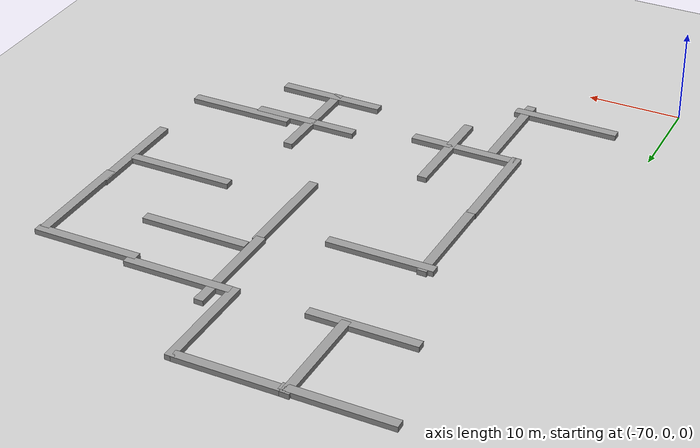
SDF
<sdf version="1.6">
 <world name="default">
  <model name="ground_plane">
   <static>1</static>
   <link name="link">
    <collision name="collision">
     <geometry><plane><normal>0 0 1</normal><size>100 100</size></plane></geometry>
     <surface><friction><ode><mu>100</mu><mu2>50</mu2></ode></friction></surface>
    </collision>
    <visual name="visual">
     <cast_shadows>0</cast_shadows>
     <geometry><plane><normal>0 0 1</normal><size>100 100</size></plane></geometry>
     <material>
      <script><uri>file://media/materials/scripts/gazebo.material</uri><name>Gazebo/Grey</name></script>
     </material>
    </visual>
   </link>
  </model>
  <model name="unit_box_0_static_clone_25">
   <link name="link">
    <inertial>
     <mass>11.3696</mass>
     <inertia><ixx>1.89495</ixx><ixy>0</ixy><ixz>0</ixz><iyy>123.426</iyy><iyz>0</iyz><izz>123.426</izz></inertia>
    </inertial>
    <kinematic>1</kinematic>
    <visual name="visual">
     <geometry><box><size>11.3696 1 1</size></box></geometry>
     <material>
      <script><name>Gazebo/Grey</name><uri>file://media/materials/scripts/gazebo.material</uri></script>
      <ambient>0.3 0.3 0.3 1</ambient>
      <diffuse>0.7 0.7 0.7 1</diffuse>
      <specular>0.01 0.01 0.01 1</specular>
      <emissive>0 0 0 1</emissive>
     </material>
    </visual>
    <collision name="collision">
     <geometry><box><size>11.3696 1 1</size></box></geometry>
     <surface>
      <friction>
       <ode><mu>1</mu><mu2>1</mu2><fdir1>0 0 0</fdir1><slip1>0</slip1><slip2>0</slip2></ode>
       <torsional>
        <coefficient>1</coefficient>
        <patch_radius>0</patch_radius>
        <surface_radius>0</surface_radius>
        <use_patch_radius>1</use_patch_radius>
        <ode><slip>0</slip></ode>
       </torsional>
      </friction>
      <bounce><restitution_coefficient>0</restitution_coefficient><threshold>1e+06</threshold></bounce>
      <contact>
       <collide_without_contact>0</collide_without_contact>
       <collide_without_contact_bitmask>1</collide_without_contact_bitmask>
       <collide_bitmask>1</collide_bitmask>
       <ode>
        <soft_cfm>0</soft_cfm>
        <soft_erp>0.2</soft_erp>
        <kp>1e+13</kp>
        <kd>1</kd>
        <max_vel>0.01</max_vel>
        <min_depth>0</min_depth>
       </ode>
       <bullet>
        <split_impulse>1</split_impulse>
        <split_impulse_penetration_threshold>-0.01</split_impulse_penetration_threshold>
        <soft_cfm>0</soft_cfm>
        <soft_erp>0.2</soft_erp>
        <kp>1e+13</kp>
        <kd>1</kd>
       </bullet>
      </contact>
     </surface>
    </collision>
   </link>
   <static>1</static>
   <pose>-27.422 19.4383 0 0 -0 0</pose>
  </model>
  <model name="unit_box_0_static_clone_26">
   <link name="link">
    <inertial>
     <mass>11.3696</mass>
     <inertia><ixx>1.89495</ixx><ixy>0</ixy><ixz>0</ixz><iyy>123.426</iyy><iyz>0</iyz><izz>123.426</izz></inertia>
    </inertial>
    <kinematic>1</kinematic>
    <visual name="visual">
     <geometry><box><size>11.3696 1 1</size></box></geometry>
     <material>
      <script><name>Gazebo/Grey</name><uri>file://media/materials/scripts/gazebo.material</uri></script>
      <ambient>0.3 0.3 0.3 1</ambient>
      <diffuse>0.7 0.7 0.7 1</diffuse>
      <specular>0.01 0.01 0.01 1</specular>
      <emissive>0 0 0 1</emissive>
     </material>
    </visual>
    <collision name="collision">
     <geometry><box><size>11.3696 1 1</size></box></geometry>
     <surface>
      <friction>
       <ode><mu>1</mu><mu2>1</mu2><fdir1>0 0 0</fdir1><slip1>0</slip1><slip2>0</slip2></ode>
       <torsional>
        <coefficient>1</coefficient>
        <patch_radius>0</patch_radius>
        <surface_radius>0</surface_radius>
        <use_patch_radius>1</use_patch_radius>
        <ode><slip>0</slip></ode>
       </torsional>
      </friction>
      <bounce><restitution_coefficient>0</restitution_coefficient><threshold>1e+06</threshold></bounce>
      <contact>
       <collide_without_contact>0</collide_without_contact>
       <collide_without_contact_bitmask>1</collide_without_contact_bitmask>
       <collide_bitmask>1</collide_bitmask>
       <ode>
        <soft_cfm>0</soft_cfm>
        <soft_erp>0.2</soft_erp>
        <kp>1e+13</kp>
        <kd>1</kd>
        <max_vel>0.01</max_vel>
        <min_depth>0</min_depth>
       </ode>
       <bullet>
        <split_impulse>1</split_impulse>
        <split_impulse_penetration_threshold>-0.01</split_impulse_penetration_threshold>
        <soft_cfm>0</soft_cfm>
        <soft_erp>0.2</soft_erp>
        <kp>1e+13</kp>
        <kd>1</kd>
       </bullet>
      </contact>
     </surface>
    </collision>
   </link>
   <static>1</static>
   <pose>-34.7623 18.6123 0 0 -0 0</pose>
  </model>
  <model name="unit_box_0_static_clone_28">
   <link name="link">
    <inertial>
     <mass>11.3696</mass>
     <inertia><ixx>1.89495</ixx><ixy>0</ixy><ixz>0</ixz><iyy>123.426</iyy><iyz>0</iyz><izz>123.426</izz></inertia>
    </inertial>
    <kinematic>1</kinematic>
    <visual name="visual">
     <geometry><box><size>11.3696 1 1</size></box></geometry>
     <material>
      <script><name>Gazebo/Grey</name><uri>file://media/materials/scripts/gazebo.material</uri></script>
      <ambient>0.3 0.3 0.3 1</ambient>
      <diffuse>0.7 0.7 0.7 1</diffuse>
      <specular>0.01 0.01 0.01 1</specular>
      <emissive>0 0 0 1</emissive>
     </material>
    </visual>
    <collision name="collision">
     <geometry><box><size>11.3696 1 1</size></box></geometry>
     <surface>
      <friction>
       <ode><mu>1</mu><mu2>1</mu2><fdir1>0 0 0</fdir1><slip1>0</slip1><slip2>0</slip2></ode>
       <torsional>
        <coefficient>1</coefficient>
        <patch_radius>0</patch_radius>
        <surface_radius>0</surface_radius>
        <use_patch_radius>1</use_patch_radius>
        <ode><slip>0</slip></ode>
       </torsional>
      </friction>
      <bounce><restitution_coefficient>0</restitution_coefficient><threshold>1e+06</threshold></bounce>
      <contact>
       <collide_without_contact>0</collide_without_contact>
       <collide_without_contact_bitmask>1</collide_without_contact_bitmask>
       <collide_bitmask>1</collide_bitmask>
       <ode>
        <soft_cfm>0</soft_cfm>
        <soft_erp>0.2</soft_erp>
        <kp>1e+13</kp>
        <kd>1</kd>
        <max_vel>0.01</max_vel>
        <min_depth>0</min_depth>
       </ode>
       <bullet>
        <split_impulse>1</split_impulse>
        <split_impulse_penetration_threshold>-0.01</split_impulse_penetration_threshold>
        <soft_cfm>0</soft_cfm>
        <soft_erp>0.2</soft_erp>
        <kp>1e+13</kp>
        <kd>1</kd>
       </bullet>
      </contact>
     </surface>
    </collision>
   </link>
   <static>1</static>
   <pose>-52.1017 16.5504 0 0 -0 0</pose>
  </model>
  <model name="unit_box_0_static_clone_30">
   <link name="link">
    <inertial>
     <mass>11.3696</mass>
     <inertia><ixx>1.89495</ixx><ixy>0</ixy><ixz>0</ixz><iyy>123.426</iyy><iyz>0</iyz><izz>123.426</izz></inertia>
    </inertial>
    <kinematic>1</kinematic>
    <visual name="visual">
     <geometry><box><size>11.3696 1 1</size></box></geometry>
     <material>
      <script><name>Gazebo/Grey</name><uri>file://media/materials/scripts/gazebo.material</uri></script>
      <ambient>0.3 0.3 0.3 1</ambient>
      <diffuse>0.7 0.7 0.7 1</diffuse>
      <specular>0.01 0.01 0.01 1</specular>
      <emissive>0 0 0 1</emissive>
     </material>
    </visual>
    <collision name="collision">
     <geometry><box><size>11.3696 1 1</size></box></geometry>
     <surface>
      <friction>
       <ode><mu>1</mu><mu2>1</mu2><fdir1>0 0 0</fdir1><slip1>0</slip1><slip2>0</slip2></ode>
       <torsional>
        <coefficient>1</coefficient>
        <patch_radius>0</patch_radius>
        <surface_radius>0</surface_radius>
        <use_patch_radius>1</use_patch_radius>
        <ode><slip>0</slip></ode>
       </torsional>
      </friction>
      <bounce><restitution_coefficient>0</restitution_coefficient><threshold>1e+06</threshold></bounce>
      <contact>
       <collide_without_contact>0</collide_without_contact>
       <collide_without_contact_bitmask>1</collide_without_contact_bitmask>
       <collide_bitmask>1</collide_bitmask>
       <ode>
        <soft_cfm>0</soft_cfm>
        <soft_erp>0.2</soft_erp>
        <kp>1e+13</kp>
        <kd>1</kd>
        <max_vel>0.01</max_vel>
        <min_depth>0</min_depth>
       </ode>
       <bullet>
        <split_impulse>1</split_impulse>
        <split_impulse_penetration_threshold>-0.01</split_impulse_penetration_threshold>
        <soft_cfm>0</soft_cfm>
        <soft_erp>0.2</soft_erp>
        <kp>1e+13</kp>
        <kd>1</kd>
       </bullet>
      </contact>
     </surface>
    </collision>
   </link>
   <static>1</static>
   <pose>-59.7194 6.87841 0 0 -0 0</pose>
  </model>
  <model name="unit_box_0_static_clone_35_clone_9">
   <link name="link">
    <inertial>
     <mass>11.3696</mass>
     <inertia><ixx>1.89495</ixx><ixy>0</ixy><ixz>0</ixz><iyy>123.426</iyy><iyz>0</iyz><izz>123.426</izz></inertia>
    </inertial>
    <kinematic>1</kinematic>
    <visual name="visual">
     <geometry><box><size>11.3696 1 1</size></box></geometry>
     <material>
      <script><name>Gazebo/Grey</name><uri>file://media/materials/scripts/gazebo.material</uri></script>
      <ambient>0.3 0.3 0.3 1</ambient>
      <diffuse>0.7 0.7 0.7 1</diffuse>
      <specular>0.01 0.01 0.01 1</specular>
      <emissive>0 0 0 1</emissive>
     </material>
    </visual>
    <collision name="collision">
     <geometry><box><size>11.3696 1 1</size></box></geometry>
     <surface>
      <friction>
       <ode><mu>1</mu><mu2>1</mu2><fdir1>0 0 0</fdir1><slip1>0</slip1><slip2>0</slip2></ode>
       <torsional>
        <coefficient>1</coefficient>
        <patch_radius>0</patch_radius>
        <surface_radius>0</surface_radius>
        <use_patch_radius>1</use_patch_radius>
        <ode><slip>0</slip></ode>
       </torsional>
      </friction>
      <bounce><restitution_coefficient>0</restitution_coefficient><threshold>1e+06</threshold></bounce>
      <contact>
       <collide_without_contact>0</collide_without_contact>
       <collide_without_contact_bitmask>1</collide_without_contact_bitmask>
       <collide_bitmask>1</collide_bitmask>
       <ode>
        <soft_cfm>0</soft_cfm>
        <soft_erp>0.2</soft_erp>
        <kp>1e+13</kp>
        <kd>1</kd>
        <max_vel>0.01</max_vel>
        <min_depth>0</min_depth>
       </ode>
       <bullet>
        <split_impulse>1</split_impulse>
        <split_impulse_penetration_threshold>-0.01</split_impulse_penetration_threshold>
        <soft_cfm>0</soft_cfm>
        <soft_erp>0.2</soft_erp>
        <kp>1e+13</kp>
        <kd>1</kd>
       </bullet>
      </contact>
     </surface>
    </collision>
   </link>
   <static>1</static>
   <pose>-55.185 11.2004 0 0 0 -1.5917</pose>
  </model>
  <model name="unit_box_0_static_clone_35_clone_8_clone">
   <link name="link">
    <inertial>
     <mass>11.3696</mass>
     <inertia><ixx>1.89495</ixx><ixy>0</ixy><ixz>0</ixz><iyy>123.426</iyy><iyz>0</iyz><izz>123.426</izz></inertia>
    </inertial>
    <kinematic>1</kinematic>
    <visual name="visual">
     <geometry><box><size>11.3696 1 1</size></box></geometry>
     <material>
      <script><name>Gazebo/Grey</name><uri>file://media/materials/scripts/gazebo.material</uri></script>
      <ambient>0.3 0.3 0.3 1</ambient>
      <diffuse>0.7 0.7 0.7 1</diffuse>
      <specular>0.01 0.01 0.01 1</specular>
      <emissive>0 0 0 1</emissive>
     </material>
    </visual>
    <collision name="collision">
     <geometry><box><size>11.3696 1 1</size></box></geometry>
     <surface>
      <friction>
       <ode><mu>1</mu><mu2>1</mu2><fdir1>0 0 0</fdir1><slip1>0</slip1><slip2>0</slip2></ode>
       <torsional>
        <coefficient>1</coefficient>
        <patch_radius>0</patch_radius>
        <surface_radius>0</surface_radius>
        <use_patch_radius>1</use_patch_radius>
        <ode><slip>0</slip></ode>
       </torsional>
      </friction>
      <bounce><restitution_coefficient>0</restitution_coefficient><threshold>1e+06</threshold></bounce>
      <contact>
       <collide_without_contact>0</collide_without_contact>
       <collide_without_contact_bitmask>1</collide_without_contact_bitmask>
       <collide_bitmask>1</collide_bitmask>
       <ode>
        <soft_cfm>0</soft_cfm>
        <soft_erp>0.2</soft_erp>
        <kp>1e+13</kp>
        <kd>1</kd>
        <max_vel>0.01</max_vel>
        <min_depth>0</min_depth>
       </ode>
       <bullet>
        <split_impulse>1</split_impulse>
        <split_impulse_penetration_threshold>-0.01</split_impulse_penetration_threshold>
        <soft_cfm>0</soft_cfm>
        <soft_erp>0.2</soft_erp>
        <kp>1e+13</kp>
        <kd>1</kd>
       </bullet>
      </contact>
     </surface>
    </collision>
   </link>
   <static>1</static>
   <pose>-50.6371 17.7685 0 0 0 -1.5917</pose>
  </model>
  <model name="unit_box_0_static_clone_35_clone_8_clone_0">
   <link name="link">
    <inertial>
     <mass>11.3696</mass>
     <inertia><ixx>1.89495</ixx><ixy>0</ixy><ixz>0</ixz><iyy>123.426</iyy><iyz>0</iyz><izz>123.426</izz></inertia>
    </inertial>
    <kinematic>1</kinematic>
    <visual name="visual">
     <geometry><box><size>11.3696 1 1</size></box></geometry>
     <material>
      <script><name>Gazebo/Grey</name><uri>file://media/materials/scripts/gazebo.material</uri></script>
      <ambient>0.3 0.3 0.3 1</ambient>
      <diffuse>0.7 0.7 0.7 1</diffuse>
      <specular>0.01 0.01 0.01 1</specular>
      <emissive>0 0 0 1</emissive>
     </material>
    </visual>
    <collision name="collision">
     <geometry><box><size>11.3696 1 1</size></box></geometry>
     <surface>
      <friction>
       <ode><mu>1</mu><mu2>1</mu2><fdir1>0 0 0</fdir1><slip1>0</slip1><slip2>0</slip2></ode>
       <torsional>
        <coefficient>1</coefficient>
        <patch_radius>0</patch_radius>
        <surface_radius>0</surface_radius>
        <use_patch_radius>1</use_patch_radius>
        <ode><slip>0</slip></ode>
       </torsional>
      </friction>
      <bounce><restitution_coefficient>0</restitution_coefficient><threshold>1e+06</threshold></bounce>
      <contact>
       <collide_without_contact>0</collide_without_contact>
       <collide_without_contact_bitmask>1</collide_without_contact_bitmask>
       <collide_bitmask>1</collide_bitmask>
       <ode>
        <soft_cfm>0</soft_cfm>
        <soft_erp>0.2</soft_erp>
        <kp>1e+13</kp>
        <kd>1</kd>
        <max_vel>0.01</max_vel>
        <min_depth>0</min_depth>
       </ode>
       <bullet>
        <split_impulse>1</split_impulse>
        <split_impulse_penetration_threshold>-0.01</split_impulse_penetration_threshold>
        <soft_cfm>0</soft_cfm>
        <soft_erp>0.2</soft_erp>
        <kp>1e+13</kp>
        <kd>1</kd>
       </bullet>
      </contact>
     </surface>
    </collision>
   </link>
   <static>1</static>
   <pose>-35.3696 17.9853 0 0 0 -1.5917</pose>
  </model>
  <model name="unit_box_0_static_clone_25_clone">
   <link name="link">
    <inertial>
     <mass>11.3696</mass>
     <inertia><ixx>1.89495</ixx><ixy>0</ixy><ixz>0</ixz><iyy>123.426</iyy><iyz>0</iyz><izz>123.426</izz></inertia>
    </inertial>
    <kinematic>1</kinematic>
    <visual name="visual">
     <geometry><box><size>11.3696 1 1</size></box></geometry>
     <material>
      <script><name>Gazebo/Grey</name><uri>file://media/materials/scripts/gazebo.material</uri></script>
      <ambient>0.3 0.3 0.3 1</ambient>
      <diffuse>0.7 0.7 0.7 1</diffuse>
      <specular>0.01 0.01 0.01 1</specular>
      <emissive>0 0 0 1</emissive>
     </material>
    </visual>
    <collision name="collision">
     <geometry><box><size>11.3696 1 1</size></box></geometry>
     <surface>
      <friction>
       <ode><mu>1</mu><mu2>1</mu2><fdir1>0 0 0</fdir1><slip1>0</slip1><slip2>0</slip2></ode>
       <torsional>
        <coefficient>1</coefficient>
        <patch_radius>0</patch_radius>
        <surface_radius>0</surface_radius>
        <use_patch_radius>1</use_patch_radius>
        <ode><slip>0</slip></ode>
       </torsional>
      </friction>
      <bounce><restitution_coefficient>0</restitution_coefficient><threshold>1e+06</threshold></bounce>
      <contact>
       <collide_without_contact>0</collide_without_contact>
       <collide_without_contact_bitmask>1</collide_without_contact_bitmask>
       <collide_bitmask>1</collide_bitmask>
       <ode>
        <soft_cfm>0</soft_cfm>
        <soft_erp>0.2</soft_erp>
        <kp>1e+13</kp>
        <kd>1</kd>
        <max_vel>0.01</max_vel>
        <min_depth>0</min_depth>
       </ode>
       <bullet>
        <split_impulse>1</split_impulse>
        <split_impulse_penetration_threshold>-0.01</split_impulse_penetration_threshold>
        <soft_cfm>0</soft_cfm>
        <soft_erp>0.2</soft_erp>
        <kp>1e+13</kp>
        <kd>1</kd>
       </bullet>
      </contact>
     </surface>
    </collision>
   </link>
   <static>1</static>
   <pose>-34.9545 12.8777 0 0 -0 0</pose>
  </model>
  <model name="unit_box_0_static_clone_35_clone_10_clone_0">
   <link name="link">
    <inertial>
     <mass>11.3696</mass>
     <inertia><ixx>1.89495</ixx><ixy>0</ixy><ixz>0</ixz><iyy>123.426</iyy><iyz>0</iyz><izz>123.426</izz></inertia>
    </inertial>
    <kinematic>1</kinematic>
    <visual name="visual">
     <geometry><box><size>11.3696 1 1</size></box></geometry>
     <material>
      <script><name>Gazebo/Grey</name><uri>file://media/materials/scripts/gazebo.material</uri></script>
      <ambient>0.3 0.3 0.3 1</ambient>
      <diffuse>0.7 0.7 0.7 1</diffuse>
      <specular>0.01 0.01 0.01 1</specular>
      <emissive>0 0 0 1</emissive>
     </material>
    </visual>
    <collision name="collision">
     <geometry><box><size>11.3696 1 1</size></box></geometry>
     <surface>
      <friction>
       <ode><mu>1</mu><mu2>1</mu2><fdir1>0 0 0</fdir1><slip1>0</slip1><slip2>0</slip2></ode>
       <torsional>
        <coefficient>1</coefficient>
        <patch_radius>0</patch_radius>
        <surface_radius>0</surface_radius>
        <use_patch_radius>1</use_patch_radius>
        <ode><slip>0</slip></ode>
       </torsional>
      </friction>
      <bounce><restitution_coefficient>0</restitution_coefficient><threshold>1e+06</threshold></bounce>
      <contact>
       <collide_without_contact>0</collide_without_contact>
       <collide_without_contact_bitmask>1</collide_without_contact_bitmask>
       <collide_bitmask>1</collide_bitmask>
       <ode>
        <soft_cfm>0</soft_cfm>
        <soft_erp>0.2</soft_erp>
        <kp>1e+13</kp>
        <kd>1</kd>
        <max_vel>0.01</max_vel>
        <min_depth>0</min_depth>
       </ode>
       <bullet>
        <split_impulse>1</split_impulse>
        <split_impulse_penetration_threshold>-0.01</split_impulse_penetration_threshold>
        <soft_cfm>0</soft_cfm>
        <soft_erp>0.2</soft_erp>
        <kp>1e+13</kp>
        <kd>1</kd>
       </bullet>
      </contact>
     </surface>
    </collision>
   </link>
   <static>1</static>
   <pose>-21.9078 32.2965 0 0 0 -1.5917</pose>
  </model>
  <model name="unit_box_0_static_clone_35_clone_10_clone_1">
   <link name="link">
    <inertial>
     <mass>11.3696</mass>
     <inertia><ixx>1.89495</ixx><ixy>0</ixy><ixz>0</ixz><iyy>123.426</iyy><iyz>0</iyz><izz>123.426</izz></inertia>
    </inertial>
    <kinematic>1</kinematic>
    <visual name="visual">
     <geometry><box><size>11.3696 1 1</size></box></geometry>
     <material>
      <script><name>Gazebo/Grey</name><uri>file://media/materials/scripts/gazebo.material</uri></script>
      <ambient>0.3 0.3 0.3 1</ambient>
      <diffuse>0.7 0.7 0.7 1</diffuse>
      <specular>0.01 0.01 0.01 1</specular>
      <emissive>0 0 0 1</emissive>
     </material>
    </visual>
    <collision name="collision">
     <geometry><box><size>11.3696 1 1</size></box></geometry>
     <surface>
      <friction>
       <ode><mu>1</mu><mu2>1</mu2><fdir1>0 0 0</fdir1><slip1>0</slip1><slip2>0</slip2></ode>
       <torsional>
        <coefficient>1</coefficient>
        <patch_radius>0</patch_radius>
        <surface_radius>0</surface_radius>
        <use_patch_radius>1</use_patch_radius>
        <ode><slip>0</slip></ode>
       </torsional>
      </friction>
      <bounce><restitution_coefficient>0</restitution_coefficient><threshold>1e+06</threshold></bounce>
      <contact>
       <collide_without_contact>0</collide_without_contact>
       <collide_without_contact_bitmask>1</collide_without_contact_bitmask>
       <collide_bitmask>1</collide_bitmask>
       <ode>
        <soft_cfm>0</soft_cfm>
        <soft_erp>0.2</soft_erp>
        <kp>1e+13</kp>
        <kd>1</kd>
        <max_vel>0.01</max_vel>
        <min_depth>0</min_depth>
       </ode>
       <bullet>
        <split_impulse>1</split_impulse>
        <split_impulse_penetration_threshold>-0.01</split_impulse_penetration_threshold>
        <soft_cfm>0</soft_cfm>
        <soft_erp>0.2</soft_erp>
        <kp>1e+13</kp>
        <kd>1</kd>
       </bullet>
      </contact>
     </surface>
    </collision>
   </link>
   <static>1</static>
   <pose>-21.5691 41.9317 0 0 0 -1.5917</pose>
  </model>
  <model name="unit_box_0_static_clone_25_clone_0">
   <link name="link">
    <inertial>
     <mass>11.3696</mass>
     <inertia><ixx>1.89495</ixx><ixy>0</ixy><ixz>0</ixz><iyy>123.426</iyy><iyz>0</iyz><izz>123.426</izz></inertia>
    </inertial>
    <kinematic>1</kinematic>
    <visual name="visual">
     <geometry><box><size>11.3696 1 1</size></box></geometry>
     <material>
      <script><name>Gazebo/Grey</name><uri>file://media/materials/scripts/gazebo.material</uri></script>
      <ambient>0.3 0.3 0.3 1</ambient>
      <diffuse>0.7 0.7 0.7 1</diffuse>
      <specular>0.01 0.01 0.01 1</specular>
      <emissive>0 0 0 1</emissive>
     </material>
    </visual>
    <collision name="collision">
     <geometry><box><size>11.3696 1 1</size></box></geometry>
     <surface>
      <friction>
       <ode><mu>1</mu><mu2>1</mu2><fdir1>0 0 0</fdir1><slip1>0</slip1><slip2>0</slip2></ode>
       <torsional>
        <coefficient>1</coefficient>
        <patch_radius>0</patch_radius>
        <surface_radius>0</surface_radius>
        <use_patch_radius>1</use_patch_radius>
        <ode><slip>0</slip></ode>
       </torsional>
      </friction>
      <bounce><restitution_coefficient>0</restitution_coefficient><threshold>1e+06</threshold></bounce>
      <contact>
       <collide_without_contact>0</collide_without_contact>
       <collide_without_contact_bitmask>1</collide_without_contact_bitmask>
       <collide_bitmask>1</collide_bitmask>
       <ode>
        <soft_cfm>0</soft_cfm>
        <soft_erp>0.2</soft_erp>
        <kp>1e+13</kp>
        <kd>1</kd>
        <max_vel>0.01</max_vel>
        <min_depth>0</min_depth>
       </ode>
       <bullet>
        <split_impulse>1</split_impulse>
        <split_impulse_penetration_threshold>-0.01</split_impulse_penetration_threshold>
        <soft_cfm>0</soft_cfm>
        <soft_erp>0.2</soft_erp>
        <kp>1e+13</kp>
        <kd>1</kd>
       </bullet>
      </contact>
     </surface>
    </collision>
   </link>
   <static>1</static>
   <pose>-27.8506 32.812 0 0 -0 0</pose>
  </model>
  <model name="unit_box_0_static_clone_25_clone_1">
   <link name="link">
    <inertial>
     <mass>11.3696</mass>
     <inertia><ixx>1.89495</ixx><ixy>0</ixy><ixz>0</ixz><iyy>123.426</iyy><iyz>0</iyz><izz>123.426</izz></inertia>
    </inertial>
    <kinematic>1</kinematic>
    <visual name="visual">
     <geometry><box><size>11.3696 1 1</size></box></geometry>
     <material>
      <script><name>Gazebo/Grey</name><uri>file://media/materials/scripts/gazebo.material</uri></script>
      <ambient>0.3 0.3 0.3 1</ambient>
      <diffuse>0.7 0.7 0.7 1</diffuse>
      <specular>0.01 0.01 0.01 1</specular>
      <emissive>0 0 0 1</emissive>
     </material>
    </visual>
    <collision name="collision">
     <geometry><box><size>11.3696 1 1</size></box></geometry>
     <surface>
      <friction>
       <ode><mu>1</mu><mu2>1</mu2><fdir1>0 0 0</fdir1><slip1>0</slip1><slip2>0</slip2></ode>
       <torsional>
        <coefficient>1</coefficient>
        <patch_radius>0</patch_radius>
        <surface_radius>0</surface_radius>
        <use_patch_radius>1</use_patch_radius>
        <ode><slip>0</slip></ode>
       </torsional>
      </friction>
      <bounce><restitution_coefficient>0</restitution_coefficient><threshold>1e+06</threshold></bounce>
      <contact>
       <collide_without_contact>0</collide_without_contact>
       <collide_without_contact_bitmask>1</collide_without_contact_bitmask>
       <collide_bitmask>1</collide_bitmask>
       <ode>
        <soft_cfm>0</soft_cfm>
        <soft_erp>0.2</soft_erp>
        <kp>1e+13</kp>
        <kd>1</kd>
        <max_vel>0.01</max_vel>
        <min_depth>0</min_depth>
       </ode>
       <bullet>
        <split_impulse>1</split_impulse>
        <split_impulse_penetration_threshold>-0.01</split_impulse_penetration_threshold>
        <soft_cfm>0</soft_cfm>
        <soft_erp>0.2</soft_erp>
        <kp>1e+13</kp>
        <kd>1</kd>
       </bullet>
      </contact>
     </surface>
    </collision>
   </link>
   <static>1</static>
   <pose>-34.8222 41.6437 0 0 -0 0</pose>
  </model>
  <model name="unit_box_0_static_clone_25_clone_2">
   <link name="link">
    <inertial>
     <mass>11.3696</mass>
     <inertia><ixx>1.89495</ixx><ixy>0</ixy><ixz>0</ixz><iyy>123.426</iyy><iyz>0</iyz><izz>123.426</izz></inertia>
    </inertial>
    <kinematic>1</kinematic>
    <visual name="visual">
     <geometry><box><size>11.3696 1 1</size></box></geometry>
     <material>
      <script><name>Gazebo/Grey</name><uri>file://media/materials/scripts/gazebo.material</uri></script>
      <ambient>0.3 0.3 0.3 1</ambient>
      <diffuse>0.7 0.7 0.7 1</diffuse>
      <specular>0.01 0.01 0.01 1</specular>
      <emissive>0 0 0 1</emissive>
     </material>
    </visual>
    <collision name="collision">
     <geometry><box><size>11.3696 1 1</size></box></geometry>
     <surface>
      <friction>
       <ode><mu>1</mu><mu2>1</mu2><fdir1>0 0 0</fdir1><slip1>0</slip1><slip2>0</slip2></ode>
       <torsional>
        <coefficient>1</coefficient>
        <patch_radius>0</patch_radius>
        <surface_radius>0</surface_radius>
        <use_patch_radius>1</use_patch_radius>
        <ode><slip>0</slip></ode>
       </torsional>
      </friction>
      <bounce><restitution_coefficient>0</restitution_coefficient><threshold>1e+06</threshold></bounce>
      <contact>
       <collide_without_contact>0</collide_without_contact>
       <collide_without_contact_bitmask>1</collide_without_contact_bitmask>
       <collide_bitmask>1</collide_bitmask>
       <ode>
        <soft_cfm>0</soft_cfm>
        <soft_erp>0.2</soft_erp>
        <kp>1e+13</kp>
        <kd>1</kd>
        <max_vel>0.01</max_vel>
        <min_depth>0</min_depth>
       </ode>
       <bullet>
        <split_impulse>1</split_impulse>
        <split_impulse_penetration_threshold>-0.01</split_impulse_penetration_threshold>
        <soft_cfm>0</soft_cfm>
        <soft_erp>0.2</soft_erp>
        <kp>1e+13</kp>
        <kd>1</kd>
       </bullet>
      </contact>
     </surface>
    </collision>
   </link>
   <static>1</static>
   <pose>-26.5025 47.8711 0 0 -0 0</pose>
  </model>
  <model name="unit_box_0_static_clone_25_clone_3">
   <link name="link">
    <inertial>
     <mass>11.3696</mass>
     <inertia><ixx>1.89495</ixx><ixy>0</ixy><ixz>0</ixz><iyy>123.426</iyy><iyz>0</iyz><izz>123.426</izz></inertia>
    </inertial>
    <kinematic>1</kinematic>
    <visual name="visual">
     <geometry><box><size>11.3696 1 1</size></box></geometry>
     <material>
      <script><name>Gazebo/Grey</name><uri>file://media/materials/scripts/gazebo.material</uri></script>
      <ambient>0.3 0.3 0.3 1</ambient>
      <diffuse>0.7 0.7 0.7 1</diffuse>
      <specular>0.01 0.01 0.01 1</specular>
      <emissive>0 0 0 1</emissive>
     </material>
    </visual>
    <collision name="collision">
     <geometry><box><size>11.3696 1 1</size></box></geometry>
     <surface>
      <friction>
       <ode><mu>1</mu><mu2>1</mu2><fdir1>0 0 0</fdir1><slip1>0</slip1><slip2>0</slip2></ode>
       <torsional>
        <coefficient>1</coefficient>
        <patch_radius>0</patch_radius>
        <surface_radius>0</surface_radius>
        <use_patch_radius>1</use_patch_radius>
        <ode><slip>0</slip></ode>
       </torsional>
      </friction>
      <bounce><restitution_coefficient>0</restitution_coefficient><threshold>1e+06</threshold></bounce>
      <contact>
       <collide_without_contact>0</collide_without_contact>
       <collide_without_contact_bitmask>1</collide_without_contact_bitmask>
       <collide_bitmask>1</collide_bitmask>
       <ode>
        <soft_cfm>0</soft_cfm>
        <soft_erp>0.2</soft_erp>
        <kp>1e+13</kp>
        <kd>1</kd>
        <max_vel>0.01</max_vel>
        <min_depth>0</min_depth>
       </ode>
       <bullet>
        <split_impulse>1</split_impulse>
        <split_impulse_penetration_threshold>-0.01</split_impulse_penetration_threshold>
        <soft_cfm>0</soft_cfm>
        <soft_erp>0.2</soft_erp>
        <kp>1e+13</kp>
        <kd>1</kd>
       </bullet>
      </contact>
     </surface>
    </collision>
   </link>
   <static>1</static>
   <pose>-37.0887 48.6123 0 0 -0 0</pose>
  </model>
  <model name="unit_box_0_static_clone_35_clone_10_clone_clone_clone">
   <link name="link">
    <inertial>
     <mass>11.3696</mass>
     <inertia><ixx>1.89495</ixx><ixy>0</ixy><ixz>0</ixz><iyy>123.426</iyy><iyz>0</iyz><izz>123.426</izz></inertia>
    </inertial>
    <kinematic>1</kinematic>
    <visual name="visual">
     <geometry><box><size>11.3696 1 1</size></box></geometry>
     <material>
      <script><name>Gazebo/Grey</name><uri>file://media/materials/scripts/gazebo.material</uri></script>
      <ambient>0.3 0.3 0.3 1</ambient>
      <diffuse>0.7 0.7 0.7 1</diffuse>
      <specular>0.01 0.01 0.01 1</specular>
      <emissive>0 0 0 1</emissive>
     </material>
    </visual>
    <collision name="collision">
     <geometry><box><size>11.3696 1 1</size></box></geometry>
     <surface>
      <friction>
       <ode><mu>1</mu><mu2>1</mu2><fdir1>0 0 0</fdir1><slip1>0</slip1><slip2>0</slip2></ode>
       <torsional>
        <coefficient>1</coefficient>
        <patch_radius>0</patch_radius>
        <surface_radius>0</surface_radius>
        <use_patch_radius>1</use_patch_radius>
        <ode><slip>0</slip></ode>
       </torsional>
      </friction>
      <bounce><restitution_coefficient>0</restitution_coefficient><threshold>1e+06</threshold></bounce>
      <contact>
       <collide_without_contact>0</collide_without_contact>
       <collide_without_contact_bitmask>1</collide_without_contact_bitmask>
       <collide_bitmask>1</collide_bitmask>
       <ode>
        <soft_cfm>0</soft_cfm>
        <soft_erp>0.2</soft_erp>
        <kp>1e+13</kp>
        <kd>1</kd>
        <max_vel>0.01</max_vel>
        <min_depth>0</min_depth>
       </ode>
       <bullet>
        <split_impulse>1</split_impulse>
        <split_impulse_penetration_threshold>-0.01</split_impulse_penetration_threshold>
        <soft_cfm>0</soft_cfm>
        <soft_erp>0.2</soft_erp>
        <kp>1e+13</kp>
        <kd>1</kd>
       </bullet>
      </contact>
     </surface>
    </collision>
   </link>
   <static>1</static>
   <pose>-41.0093 45.6225 0 0 0 -1.5917</pose>
  </model>
  <model name="unit_box_0_static_clone_35_clone_10_clone_clone_clone_0">
   <link name="link">
    <inertial>
     <mass>11.3696</mass>
     <inertia><ixx>1.89495</ixx><ixy>0</ixy><ixz>0</ixz><iyy>123.426</iyy><iyz>0</iyz><izz>123.426</izz></inertia>
    </inertial>
    <kinematic>1</kinematic>
    <visual name="visual">
     <geometry><box><size>11.3696 1 1</size></box></geometry>
     <material>
      <script><name>Gazebo/Grey</name><uri>file://media/materials/scripts/gazebo.material</uri></script>
      <ambient>0.3 0.3 0.3 1</ambient>
      <diffuse>0.7 0.7 0.7 1</diffuse>
      <specular>0.01 0.01 0.01 1</specular>
      <emissive>0 0 0 1</emissive>
     </material>
    </visual>
    <collision name="collision">
     <geometry><box><size>11.3696 1 1</size></box></geometry>
     <surface>
      <friction>
       <ode><mu>1</mu><mu2>1</mu2><fdir1>0 0 0</fdir1><slip1>0</slip1><slip2>0</slip2></ode>
       <torsional>
        <coefficient>1</coefficient>
        <patch_radius>0</patch_radius>
        <surface_radius>0</surface_radius>
        <use_patch_radius>1</use_patch_radius>
        <ode><slip>0</slip></ode>
       </torsional>
      </friction>
      <bounce><restitution_coefficient>0</restitution_coefficient><threshold>1e+06</threshold></bounce>
      <contact>
       <collide_without_contact>0</collide_without_contact>
       <collide_without_contact_bitmask>1</collide_without_contact_bitmask>
       <collide_bitmask>1</collide_bitmask>
       <ode>
        <soft_cfm>0</soft_cfm>
        <soft_erp>0.2</soft_erp>
        <kp>1e+13</kp>
        <kd>1</kd>
        <max_vel>0.01</max_vel>
        <min_depth>0</min_depth>
       </ode>
       <bullet>
        <split_impulse>1</split_impulse>
        <split_impulse_penetration_threshold>-0.01</split_impulse_penetration_threshold>
        <soft_cfm>0</soft_cfm>
        <soft_erp>0.2</soft_erp>
        <kp>1e+13</kp>
        <kd>1</kd>
       </bullet>
      </contact>
     </surface>
    </collision>
   </link>
   <static>1</static>
   <pose>-41.0525 34.8017 0 0 0 -1.5917</pose>
  </model>
  <model name="unit_box_0_static_clone_35_clone_10_clone_clone_clone_1">
   <link name="link">
    <inertial>
     <mass>11.3696</mass>
     <inertia><ixx>1.89495</ixx><ixy>0</ixy><ixz>0</ixz><iyy>123.426</iyy><iyz>0</iyz><izz>123.426</izz></inertia>
    </inertial>
    <kinematic>1</kinematic>
    <visual name="visual">
     <geometry><box><size>11.3696 1 1</size></box></geometry>
     <material>
      <script><name>Gazebo/Grey</name><uri>file://media/materials/scripts/gazebo.material</uri></script>
      <ambient>0.3 0.3 0.3 1</ambient>
      <diffuse>0.7 0.7 0.7 1</diffuse>
      <specular>0.01 0.01 0.01 1</specular>
      <emissive>0 0 0 1</emissive>
     </material>
    </visual>
    <collision name="collision">
     <geometry><box><size>11.3696 1 1</size></box></geometry>
     <surface>
      <friction>
       <ode><mu>1</mu><mu2>1</mu2><fdir1>0 0 0</fdir1><slip1>0</slip1><slip2>0</slip2></ode>
       <torsional>
        <coefficient>1</coefficient>
        <patch_radius>0</patch_radius>
        <surface_radius>0</surface_radius>
        <use_patch_radius>1</use_patch_radius>
        <ode><slip>0</slip></ode>
       </torsional>
      </friction>
      <bounce><restitution_coefficient>0</restitution_coefficient><threshold>1e+06</threshold></bounce>
      <contact>
       <collide_without_contact>0</collide_without_contact>
       <collide_without_contact_bitmask>1</collide_without_contact_bitmask>
       <collide_bitmask>1</collide_bitmask>
       <ode>
        <soft_cfm>0</soft_cfm>
        <soft_erp>0.2</soft_erp>
        <kp>1e+13</kp>
        <kd>1</kd>
        <max_vel>0.01</max_vel>
        <min_depth>0</min_depth>
       </ode>
       <bullet>
        <split_impulse>1</split_impulse>
        <split_impulse_penetration_threshold>-0.01</split_impulse_penetration_threshold>
        <soft_cfm>0</soft_cfm>
        <soft_erp>0.2</soft_erp>
        <kp>1e+13</kp>
        <kd>1</kd>
       </bullet>
      </contact>
     </surface>
    </collision>
   </link>
   <static>1</static>
   <pose>-57.6962 21.6163 0 0 0 -1.5917</pose>
  </model>
  <model name="unit_box_0_static_clone_35_clone_10_clone_clone_clone_2">
   <link name="link">
    <inertial>
     <mass>11.3696</mass>
     <inertia><ixx>1.89495</ixx><ixy>0</ixy><ixz>0</ixz><iyy>123.426</iyy><iyz>0</iyz><izz>123.426</izz></inertia>
    </inertial>
    <kinematic>1</kinematic>
    <visual name="visual">
     <geometry><box><size>11.3696 1 1</size></box></geometry>
     <material>
      <script><name>Gazebo/Grey</name><uri>file://media/materials/scripts/gazebo.material</uri></script>
      <ambient>0.3 0.3 0.3 1</ambient>
      <diffuse>0.7 0.7 0.7 1</diffuse>
      <specular>0.01 0.01 0.01 1</specular>
      <emissive>0 0 0 1</emissive>
     </material>
    </visual>
    <collision name="collision">
     <geometry><box><size>11.3696 1 1</size></box></geometry>
     <surface>
      <friction>
       <ode><mu>1</mu><mu2>1</mu2><fdir1>0 0 0</fdir1><slip1>0</slip1><slip2>0</slip2></ode>
       <torsional>
        <coefficient>1</coefficient>
        <patch_radius>0</patch_radius>
        <surface_radius>0</surface_radius>
        <use_patch_radius>1</use_patch_radius>
        <ode><slip>0</slip></ode>
       </torsional>
      </friction>
      <bounce><restitution_coefficient>0</restitution_coefficient><threshold>1e+06</threshold></bounce>
      <contact>
       <collide_without_contact>0</collide_without_contact>
       <collide_without_contact_bitmask>1</collide_without_contact_bitmask>
       <collide_bitmask>1</collide_bitmask>
       <ode>
        <soft_cfm>0</soft_cfm>
        <soft_erp>0.2</soft_erp>
        <kp>1e+13</kp>
        <kd>1</kd>
        <max_vel>0.01</max_vel>
        <min_depth>0</min_depth>
       </ode>
       <bullet>
        <split_impulse>1</split_impulse>
        <split_impulse_penetration_threshold>-0.01</split_impulse_penetration_threshold>
        <soft_cfm>0</soft_cfm>
        <soft_erp>0.2</soft_erp>
        <kp>1e+13</kp>
        <kd>1</kd>
       </bullet>
      </contact>
     </surface>
    </collision>
   </link>
   <static>1</static>
   <pose>-57.4151 32.5537 0 0 0 -1.5917</pose>
  </model>
  <model name="unit_box_0_static_clone_35_clone_10_clone_clone_clone_3">
   <link name="link">
    <inertial>
     <mass>11.3696</mass>
     <inertia><ixx>1.89495</ixx><ixy>0</ixy><ixz>0</ixz><iyy>123.426</iyy><iyz>0</iyz><izz>123.426</izz></inertia>
    </inertial>
    <kinematic>1</kinematic>
    <visual name="visual">
     <geometry><box><size>11.3696 1 1</size></box></geometry>
     <material>
      <script><name>Gazebo/Grey</name><uri>file://media/materials/scripts/gazebo.material</uri></script>
      <ambient>0.3 0.3 0.3 1</ambient>
      <diffuse>0.7 0.7 0.7 1</diffuse>
      <specular>0.01 0.01 0.01 1</specular>
      <emissive>0 0 0 1</emissive>
     </material>
    </visual>
    <collision name="collision">
     <geometry><box><size>11.3696 1 1</size></box></geometry>
     <surface>
      <friction>
       <ode><mu>1</mu><mu2>1</mu2><fdir1>0 0 0</fdir1><slip1>0</slip1><slip2>0</slip2></ode>
       <torsional>
        <coefficient>1</coefficient>
        <patch_radius>0</patch_radius>
        <surface_radius>0</surface_radius>
        <use_patch_radius>1</use_patch_radius>
        <ode><slip>0</slip></ode>
       </torsional>
      </friction>
      <bounce><restitution_coefficient>0</restitution_coefficient><threshold>1e+06</threshold></bounce>
      <contact>
       <collide_without_contact>0</collide_without_contact>
       <collide_without_contact_bitmask>1</collide_without_contact_bitmask>
       <collide_bitmask>1</collide_bitmask>
       <ode>
        <soft_cfm>0</soft_cfm>
        <soft_erp>0.2</soft_erp>
        <kp>1e+13</kp>
        <kd>1</kd>
        <max_vel>0.01</max_vel>
        <min_depth>0</min_depth>
       </ode>
       <bullet>
        <split_impulse>1</split_impulse>
        <split_impulse_penetration_threshold>-0.01</split_impulse_penetration_threshold>
        <soft_cfm>0</soft_cfm>
        <soft_erp>0.2</soft_erp>
        <kp>1e+13</kp>
        <kd>1</kd>
       </bullet>
      </contact>
     </surface>
    </collision>
   </link>
   <static>1</static>
   <pose>-42.9193 53.8122 0 0 0 -1.5917</pose>
  </model>
  <model name="unit_box_0_static_clone_25_clone_1_clone">
   <link name="link">
    <inertial>
     <mass>11.3696</mass>
     <inertia><ixx>1.89495</ixx><ixy>0</ixy><ixz>0</ixz><iyy>123.426</iyy><iyz>0</iyz><izz>123.426</izz></inertia>
    </inertial>
    <kinematic>1</kinematic>
    <visual name="visual">
     <geometry><box><size>11.3696 1 1</size></box></geometry>
     <material>
      <script><name>Gazebo/Grey</name><uri>file://media/materials/scripts/gazebo.material</uri></script>
      <ambient>0.3 0.3 0.3 1</ambient>
      <diffuse>0.7 0.7 0.7 1</diffuse>
      <specular>0.01 0.01 0.01 1</specular>
      <emissive>0 0 0 1</emissive>
     </material>
    </visual>
    <collision name="collision">
     <geometry><box><size>11.3696 1 1</size></box></geometry>
     <surface>
      <friction>
       <ode><mu>1</mu><mu2>1</mu2><fdir1>0 0 0</fdir1><slip1>0</slip1><slip2>0</slip2></ode>
       <torsional>
        <coefficient>1</coefficient>
        <patch_radius>0</patch_radius>
        <surface_radius>0</surface_radius>
        <use_patch_radius>1</use_patch_radius>
        <ode><slip>0</slip></ode>
       </torsional>
      </friction>
      <bounce><restitution_coefficient>0</restitution_coefficient><threshold>1e+06</threshold></bounce>
      <contact>
       <collide_without_contact>0</collide_without_contact>
       <collide_without_contact_bitmask>1</collide_without_contact_bitmask>
       <collide_bitmask>1</collide_bitmask>
       <ode>
        <soft_cfm>0</soft_cfm>
        <soft_erp>0.2</soft_erp>
        <kp>1e+13</kp>
        <kd>1</kd>
        <max_vel>0.01</max_vel>
        <min_depth>0</min_depth>
       </ode>
       <bullet>
        <split_impulse>1</split_impulse>
        <split_impulse_penetration_threshold>-0.01</split_impulse_penetration_threshold>
        <soft_cfm>0</soft_cfm>
        <soft_erp>0.2</soft_erp>
        <kp>1e+13</kp>
        <kd>1</kd>
       </bullet>
      </contact>
     </surface>
    </collision>
   </link>
   <static>1</static>
   <pose>-48.595 59.0146 0 0 -0 0</pose>
  </model>
  <model name="unit_box_0_static_clone_25_clone_1_clone_0">
   <link name="link">
    <inertial>
     <mass>11.3696</mass>
     <inertia><ixx>1.89495</ixx><ixy>0</ixy><ixz>0</ixz><iyy>123.426</iyy><iyz>0</iyz><izz>123.426</izz></inertia>
    </inertial>
    <kinematic>1</kinematic>
    <visual name="visual">
     <geometry><box><size>11.3696 1 1</size></box></geometry>
     <material>
      <script><name>Gazebo/Grey</name><uri>file://media/materials/scripts/gazebo.material</uri></script>
      <ambient>0.3 0.3 0.3 1</ambient>
      <diffuse>0.7 0.7 0.7 1</diffuse>
      <specular>0.01 0.01 0.01 1</specular>
      <emissive>0 0 0 1</emissive>
     </material>
    </visual>
    <collision name="collision">
     <geometry><box><size>11.3696 1 1</size></box></geometry>
     <surface>
      <friction>
       <ode><mu>1</mu><mu2>1</mu2><fdir1>0 0 0</fdir1><slip1>0</slip1><slip2>0</slip2></ode>
       <torsional>
        <coefficient>1</coefficient>
        <patch_radius>0</patch_radius>
        <surface_radius>0</surface_radius>
        <use_patch_radius>1</use_patch_radius>
        <ode><slip>0</slip></ode>
       </torsional>
      </friction>
      <bounce><restitution_coefficient>0</restitution_coefficient><threshold>1e+06</threshold></bounce>
      <contact>
       <collide_without_contact>0</collide_without_contact>
       <collide_without_contact_bitmask>1</collide_without_contact_bitmask>
       <collide_bitmask>1</collide_bitmask>
       <ode>
        <soft_cfm>0</soft_cfm>
        <soft_erp>0.2</soft_erp>
        <kp>1e+13</kp>
        <kd>1</kd>
        <max_vel>0.01</max_vel>
        <min_depth>0</min_depth>
       </ode>
       <bullet>
        <split_impulse>1</split_impulse>
        <split_impulse_penetration_threshold>-0.01</split_impulse_penetration_threshold>
        <soft_cfm>0</soft_cfm>
        <soft_erp>0.2</soft_erp>
        <kp>1e+13</kp>
        <kd>1</kd>
       </bullet>
      </contact>
     </surface>
    </collision>
   </link>
   <static>1</static>
   <pose>-56.2638 48.3356 0 0 -0 0</pose>
  </model>
  <model name="unit_box_0_static_clone_35_clone_10_clone_clone_clone_clone">
   <link name="link">
    <inertial>
     <mass>11.3696</mass>
     <inertia><ixx>1.89495</ixx><ixy>0</ixy><ixz>0</ixz><iyy>123.426</iyy><iyz>0</iyz><izz>123.426</izz></inertia>
    </inertial>
    <kinematic>1</kinematic>
    <visual name="visual">
     <geometry><box><size>11.3696 1 1</size></box></geometry>
     <material>
      <script><name>Gazebo/Grey</name><uri>file://media/materials/scripts/gazebo.material</uri></script>
      <ambient>0.3 0.3 0.3 1</ambient>
      <diffuse>0.7 0.7 0.7 1</diffuse>
      <specular>0.01 0.01 0.01 1</specular>
      <emissive>0 0 0 1</emissive>
     </material>
    </visual>
    <collision name="collision">
     <geometry><box><size>11.3696 1 1</size></box></geometry>
     <surface>
      <friction>
       <ode><mu>1</mu><mu2>1</mu2><fdir1>0 0 0</fdir1><slip1>0</slip1><slip2>0</slip2></ode>
       <torsional>
        <coefficient>1</coefficient>
        <patch_radius>0</patch_radius>
        <surface_radius>0</surface_radius>
        <use_patch_radius>1</use_patch_radius>
        <ode><slip>0</slip></ode>
       </torsional>
      </friction>
      <bounce><restitution_coefficient>0</restitution_coefficient><threshold>1e+06</threshold></bounce>
      <contact>
       <collide_without_contact>0</collide_without_contact>
       <collide_without_contact_bitmask>1</collide_without_contact_bitmask>
       <collide_bitmask>1</collide_bitmask>
       <ode>
        <soft_cfm>0</soft_cfm>
        <soft_erp>0.2</soft_erp>
        <kp>1e+13</kp>
        <kd>1</kd>
        <max_vel>0.01</max_vel>
        <min_depth>0</min_depth>
       </ode>
       <bullet>
        <split_impulse>1</split_impulse>
        <split_impulse_penetration_threshold>-0.01</split_impulse_penetration_threshold>
        <soft_cfm>0</soft_cfm>
        <soft_erp>0.2</soft_erp>
        <kp>1e+13</kp>
        <kd>1</kd>
       </bullet>
      </contact>
     </surface>
    </collision>
   </link>
   <static>1</static>
   <pose>-54.3473 53.8543 0 0 0 -1.5917</pose>
  </model>
  <model name="unit_box_0_static_clone_25_clone_1_clone_0_clone">
   <link name="link">
    <inertial>
     <mass>11.3696</mass>
     <inertia><ixx>1.89495</ixx><ixy>0</ixy><ixz>0</ixz><iyy>123.426</iyy><iyz>0</iyz><izz>123.426</izz></inertia>
    </inertial>
    <kinematic>1</kinematic>
    <visual name="visual">
     <geometry><box><size>11.3696 1 1</size></box></geometry>
     <material>
      <script><name>Gazebo/Grey</name><uri>file://media/materials/scripts/gazebo.material</uri></script>
      <ambient>0.3 0.3 0.3 1</ambient>
      <diffuse>0.7 0.7 0.7 1</diffuse>
      <specular>0.01 0.01 0.01 1</specular>
      <emissive>0 0 0 1</emissive>
     </material>
    </visual>
    <collision name="collision">
     <geometry><box><size>11.3696 1 1</size></box></geometry>
     <surface>
      <friction>
       <ode><mu>1</mu><mu2>1</mu2><fdir1>0 0 0</fdir1><slip1>0</slip1><slip2>0</slip2></ode>
       <torsional>
        <coefficient>1</coefficient>
        <patch_radius>0</patch_radius>
        <surface_radius>0</surface_radius>
        <use_patch_radius>1</use_patch_radius>
        <ode><slip>0</slip></ode>
       </torsional>
      </friction>
      <bounce><restitution_coefficient>0</restitution_coefficient><threshold>1e+06</threshold></bounce>
      <contact>
       <collide_without_contact>0</collide_without_contact>
       <collide_without_contact_bitmask>1</collide_without_contact_bitmask>
       <collide_bitmask>1</collide_bitmask>
       <ode>
        <soft_cfm>0</soft_cfm>
        <soft_erp>0.2</soft_erp>
        <kp>1e+13</kp>
        <kd>1</kd>
        <max_vel>0.01</max_vel>
        <min_depth>0</min_depth>
       </ode>
       <bullet>
        <split_impulse>1</split_impulse>
        <split_impulse_penetration_threshold>-0.01</split_impulse_penetration_threshold>
        <soft_cfm>0</soft_cfm>
        <soft_erp>0.2</soft_erp>
        <kp>1e+13</kp>
        <kd>1</kd>
       </bullet>
      </contact>
     </surface>
    </collision>
   </link>
   <static>1</static>
   <pose>-52.6861 37.4333 0 0 -0 0</pose>
  </model>
  <model name="unit_box_0_static_clone_25_clone_1_clone_0_clone_0">
   <link name="link">
    <inertial>
     <mass>11.3696</mass>
     <inertia><ixx>1.89495</ixx><ixy>0</ixy><ixz>0</ixz><iyy>123.426</iyy><iyz>0</iyz><izz>123.426</izz></inertia>
    </inertial>
    <kinematic>1</kinematic>
    <visual name="visual">
     <geometry><box><size>11.3696 1 1</size></box></geometry>
     <material>
      <script><name>Gazebo/Grey</name><uri>file://media/materials/scripts/gazebo.material</uri></script>
      <ambient>0.3 0.3 0.3 1</ambient>
      <diffuse>0.7 0.7 0.7 1</diffuse>
      <specular>0.01 0.01 0.01 1</specular>
      <emissive>0 0 0 1</emissive>
     </material>
    </visual>
    <collision name="collision">
     <geometry><box><size>11.3696 1 1</size></box></geometry>
     <surface>
      <friction>
       <ode><mu>1</mu><mu2>1</mu2><fdir1>0 0 0</fdir1><slip1>0</slip1><slip2>0</slip2></ode>
       <torsional>
        <coefficient>1</coefficient>
        <patch_radius>0</patch_radius>
        <surface_radius>0</surface_radius>
        <use_patch_radius>1</use_patch_radius>
        <ode><slip>0</slip></ode>
       </torsional>
      </friction>
      <bounce><restitution_coefficient>0</restitution_coefficient><threshold>1e+06</threshold></bounce>
      <contact>
       <collide_without_contact>0</collide_without_contact>
       <collide_without_contact_bitmask>1</collide_without_contact_bitmask>
       <collide_bitmask>1</collide_bitmask>
       <ode>
        <soft_cfm>0</soft_cfm>
        <soft_erp>0.2</soft_erp>
        <kp>1e+13</kp>
        <kd>1</kd>
        <max_vel>0.01</max_vel>
        <min_depth>0</min_depth>
       </ode>
       <bullet>
        <split_impulse>1</split_impulse>
        <split_impulse_penetration_threshold>-0.01</split_impulse_penetration_threshold>
        <soft_cfm>0</soft_cfm>
        <soft_erp>0.2</soft_erp>
        <kp>1e+13</kp>
        <kd>1</kd>
       </bullet>
      </contact>
     </surface>
    </collision>
   </link>
   <static>1</static>
   <pose>-59.1765 58.8087 0 0 -0 0</pose>
  </model>
 </world>
</sdf>
